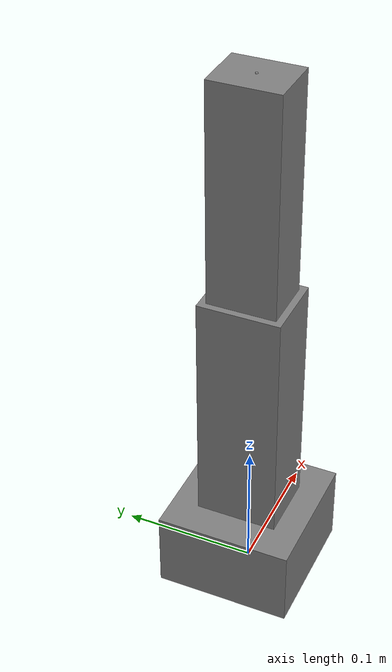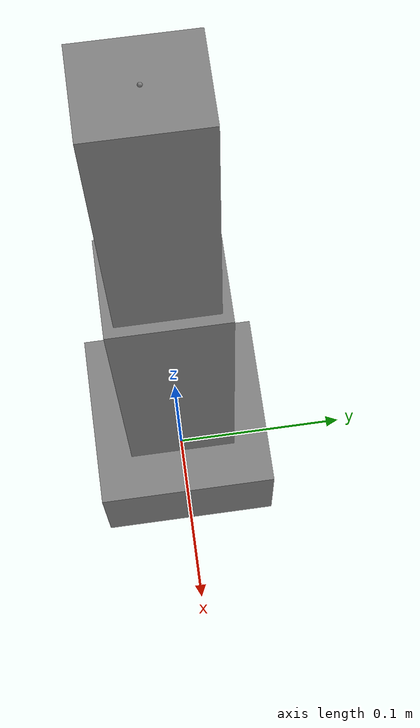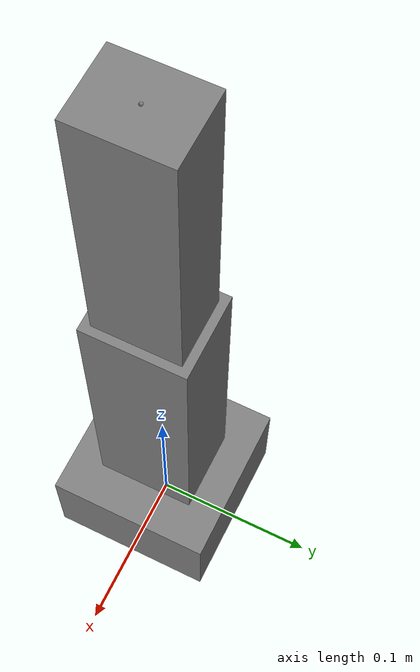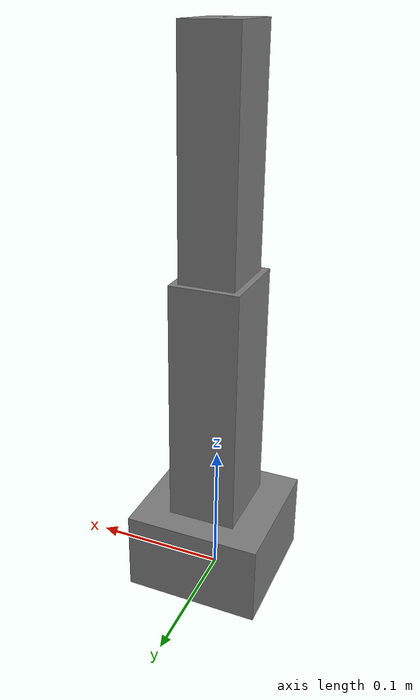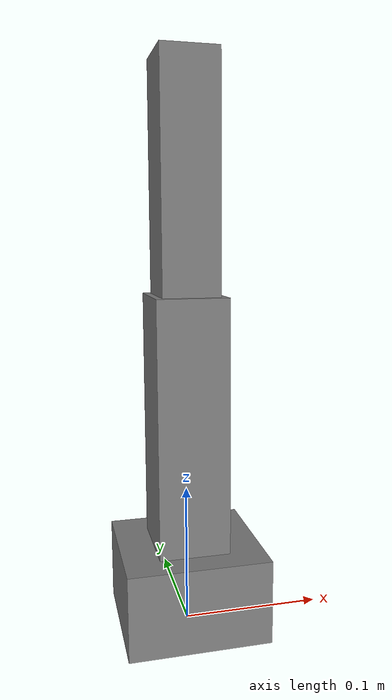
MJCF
<?xml version='1.0' encoding='utf-8'?>
<mujoco model="robot">
  <compiler angle="radian" eulerseq="XYZ" inertiafromgeom="false" fusestatic="false" />
  <option timestep="0.002" gravity="0 0 -9.8100000000000005" />
  <asset />
  <worldbody>
    <body name="base_link" pos="0 0 0" euler="0 0 0">
      <inertial mass="0.90000000000000002" pos="0 0 0.029999999999999999" fullinertia="0.0010200000000000001 0.0010200000000000001 0.0015000000000000005 0 0 0" />
      <geom name="base_link_visuals_0" pos="0 0 0.029999999999999999" euler="0 0 0" group="1" contype="0" conaffinity="0" density="0" type="box" size="0.050000000000000003 0.050000000000000003 0.029999999999999999" />
      <geom name="base_link_collisions_0" pos="0 0 0.029999999999999999" euler="0 0 0" group="3" contype="1" conaffinity="1" density="0" type="box" size="0.050000000000000003 0.050000000000000003 0.029999999999999999" />
      <body name="shoulder_link" pos="0 0 0.059999999999999998" euler="0 0 0">
        <joint name="shoulder_joint" type="hinge" axis="0 1 0" limited="true" range="-1.3999999999999999 1.3999999999999999" actuatorfrclimited="true" actuatorfrcrange="-10 10" damping="0.050000000000000003" frictionloss="0" />
        <inertial mass="0.45000000000000001" pos="0 0 0.089999999999999997" fullinertia="0.0013499999999999999 0.00130875 0.00022875 0 0 0" />
        <geom name="shoulder_link_visuals_0" pos="0 0 0.089999999999999997" euler="0 0 0" group="1" contype="0" conaffinity="0" density="0" type="box" size="0.025000000000000001 0.029999999999999999 0.089999999999999997" />
        <geom name="shoulder_link_collisions_0" pos="0 0 0.089999999999999997" euler="0 0 0" group="3" contype="1" conaffinity="1" density="0" type="box" size="0.025000000000000001 0.029999999999999999 0.089999999999999997" />
        <body name="forearm_link" pos="0 0 0.17999999999999999" euler="0 0 0">
          <joint name="elbow_joint" type="hinge" axis="0 1 0" limited="true" range="-2.2000000000000002 2.2000000000000002" actuatorfrclimited="true" actuatorfrcrange="-6 6" damping="0.029999999999999999" frictionloss="0" />
          <inertial mass="0.29999999999999999" pos="0 0 0.080000000000000002" fullinertia="0.0007025 0.00068000000000000005 0.0001025 0 0 0" />
          <geom name="forearm_link_visuals_0" pos="0 0 0.080000000000000002" euler="0 0 0" group="1" contype="0" conaffinity="0" density="0" type="box" size="0.02 0.025000000000000001 0.080000000000000002" />
          <geom name="forearm_link_collisions_0" pos="0 0 0.080000000000000002" euler="0 0 0" group="3" contype="1" conaffinity="1" density="0" type="box" size="0.02 0.025000000000000001 0.080000000000000002" />
          <site name="tool" pos="0 0 0.16" euler="0 0 0" size="0.001" />
        </body>
      </body>
    </body>
  </worldbody>
</mujoco>
